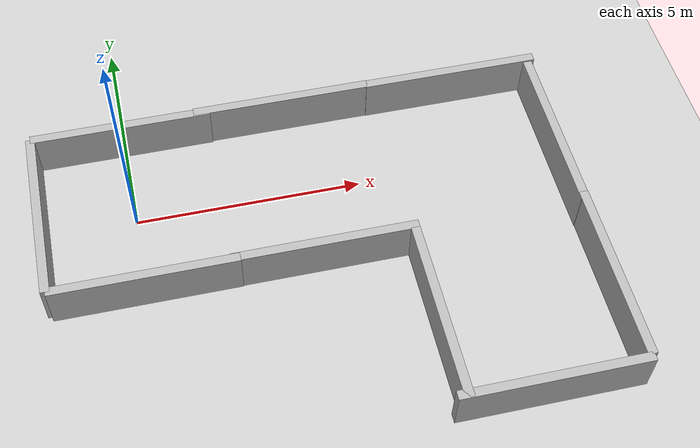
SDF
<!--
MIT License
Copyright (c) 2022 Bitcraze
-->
<sdf version="1.10">
 <world name="demo">
  <plugin name="gz::sim::systems::Physics" filename="gz-sim-physics-system"/>
  <plugin name="gz::sim::systems::Sensors" filename="gz-sim-sensors-system">
   <render_engine>ogre2</render_engine>
  </plugin>
  <plugin name="gz::sim::systems::SceneBroadcaster" filename="gz-sim-scene-broadcaster-system"/>
  <plugin name="gz::sim::systems::UserCommands" filename="gz-sim-user-commands-system"/>
  <gravity>0 0 -9.8000000000000007</gravity>
  <magnetic_field>5.5644999999999998e-06 2.2875799999999999e-05 -4.2388400000000002e-05</magnetic_field>
  <atmosphere type="adiabatic"/>
  <physics type="ode">
   <max_step_size>0.001</max_step_size>
   <real_time_factor>1</real_time_factor>
   <real_time_update_rate>1000</real_time_update_rate>
  </physics>
  <scene>
   <ambient>0.400000006 0.400000006 0.400000006 1</ambient>
   <background>0.699999988 0.699999988 0.699999988 1</background>
   <shadows>true</shadows>
  </scene>
  <model name="ground_plane">
   <static>true</static>
   <link name="link">
    <collision name="collision">
     <geometry><plane><normal>0 0 1</normal><size>100 100</size></plane></geometry>
    </collision>
    <visual name="visual">
     <geometry><plane><normal>0 0 1</normal><size>100 100</size></plane></geometry>
     <material>
      <ambient>0.800000012 0.800000012 0.800000012 1</ambient>
      <diffuse>0.800000012 0.800000012 0.800000012 1</diffuse>
      <specular>0.800000012 0.800000012 0.800000012 1</specular>
     </material>
    </visual>
    <inertial>
     <mass>1</mass>
     <inertia><ixx>1</ixx><ixy>0</ixy><ixz>0</ixz><iyy>1</iyy><iyz>0</iyz><izz>1</izz></inertia>
    </inertial>
   </link>
  </model>
  <model name="wall2">
   <pose>-2 0 0.5 0 0 0</pose>
   <static>true</static>
   <link name="link">
    <visual name="visual"><geometry><box><size>0.20000000000000001 4 1</size></box></geometry></visual>
    <inertial>
     <mass>1</mass>
     <inertia><ixx>1</ixx><ixy>0</ixy><ixz>0</ixz><iyy>1</iyy><iyz>0</iyz><izz>1</izz></inertia>
    </inertial>
   </link>
  </model>
  <model name="wall3">
   <pose>0 2 0.5 0 0 1.5699999999999998</pose>
   <static>true</static>
   <link name="link">
    <visual name="visual"><geometry><box><size>0.20000000000000001 4 1</size></box></geometry></visual>
    <inertial>
     <mass>1</mass>
     <inertia><ixx>1</ixx><ixy>0</ixy><ixz>0</ixz><iyy>1</iyy><iyz>0</iyz><izz>1</izz></inertia>
    </inertial>
   </link>
  </model>
  <model name="wall4">
   <pose>0 -2 0.5 0 0 1.5699999999999998</pose>
   <static>true</static>
   <link name="link">
    <visual name="visual"><geometry><box><size>0.20000000000000001 4 1</size></box></geometry></visual>
    <inertial>
     <mass>1</mass>
     <inertia><ixx>1</ixx><ixy>0</ixy><ixz>0</ixz><iyy>1</iyy><iyz>0</iyz><izz>1</izz></inertia>
    </inertial>
   </link>
  </model>
  <model name="wall4_1">
   <pose>3.7989777074036049 -1.9881095340495329 0.5 0 0 1.5700000841906603</pose>
   <static>true</static>
   <link name="link">
    <visual name="visual"><geometry><box><size>0.20000000000000001 4 1</size></box></geometry></visual>
   </link>
  </model>
  <model name="wall4_2">
   <pose>3.6406544208767677 2.0264572847186386 0.5 0 0 1.5700000841906603</pose>
   <static>true</static>
   <link name="link">
    <visual name="visual"><geometry><box><size>0.20000000000000001 4 1</size></box></geometry></visual>
   </link>
  </model>
  <model name="wall2_1">
   <pose>5.7029804680582314 -4.063950813810516 0.5 0 0 0</pose>
   <static>true</static>
   <link name="link">
    <visual name="visual"><geometry><box><size>0.20000000000000001 4 1</size></box></geometry></visual>
   </link>
  </model>
  <model name="wall4_1_1">
   <pose>7.4734790884814162 -5.9880640611617704 0.5 0 0 1.5700000841906603</pose>
   <static>true</static>
   <link name="link">
    <visual name="visual"><geometry><box><size>0.20000000000000001 4 1</size></box></geometry></visual>
   </link>
  </model>
  <model name="wall2_1_1">
   <pose>9.4412396376444221 -3.9364481368619058 0.5 0 0 0</pose>
   <static>true</static>
   <link name="link">
    <visual name="visual"><geometry><box><size>0.20000000000000001 4 1</size></box></geometry></visual>
   </link>
  </model>
  <model name="wall2_1_2">
   <pose>9.4325774543867471 -0.12147621150623943 0.5 0 0 0</pose>
   <static>true</static>
   <link name="link">
    <visual name="visual"><geometry><box><size>0.20000000000000001 4 1</size></box></geometry></visual>
   </link>
  </model>
  <model name="wall4_2_1">
   <pose>7.6107520477710562 2.0123158791031286 0.5 0 0 1.5700000841906603</pose>
   <static>true</static>
   <link name="link">
    <visual name="visual"><geometry><box><size>0.20000000000000001 4 1</size></box></geometry></visual>
   </link>
  </model>
  <light name="sun" type="directional">
   <pose>0 0 10 0 0 0</pose>
   <intensity>1</intensity>
   <direction>-0.5 0.10000000000000001 -0.90000000000000002</direction>
   <diffuse>0.800000012 0.800000012 0.800000012 1</diffuse>
   <specular>0.200000003 0.200000003 0.200000003 1</specular>
   <attenuation>
    <range>1000</range>
    <linear>0.01</linear>
    <constant>0.90000000000000002</constant>
    <quadratic>0.001</quadratic>
   </attenuation>
   <spot><inner_angle>0</inner_angle><outer_angle>0</outer_angle><falloff>0</falloff></spot>
  </light>
 </world>
</sdf>
